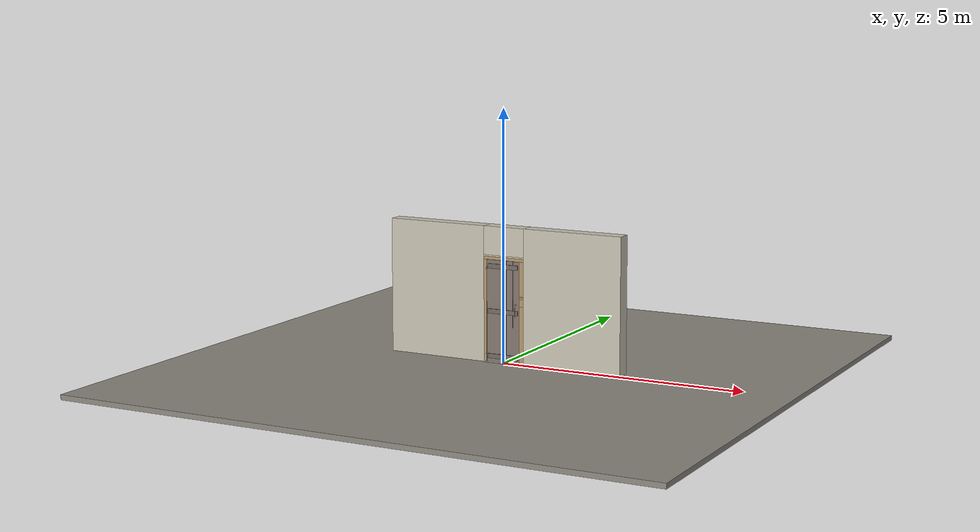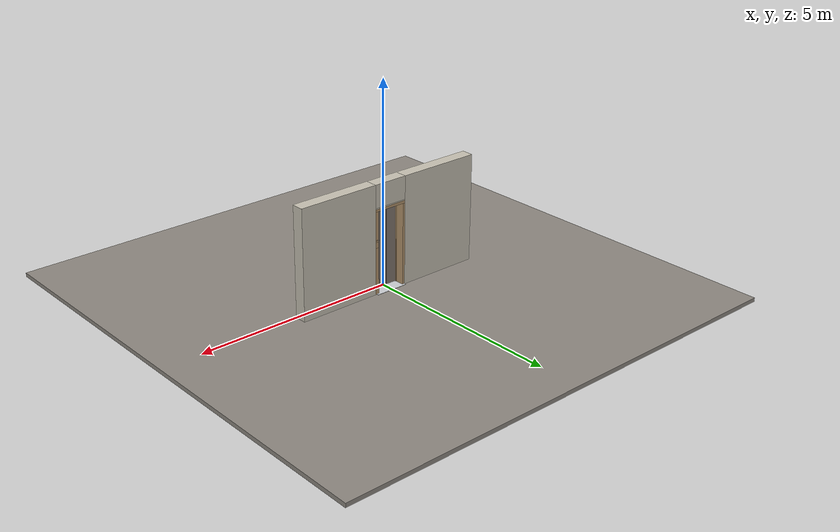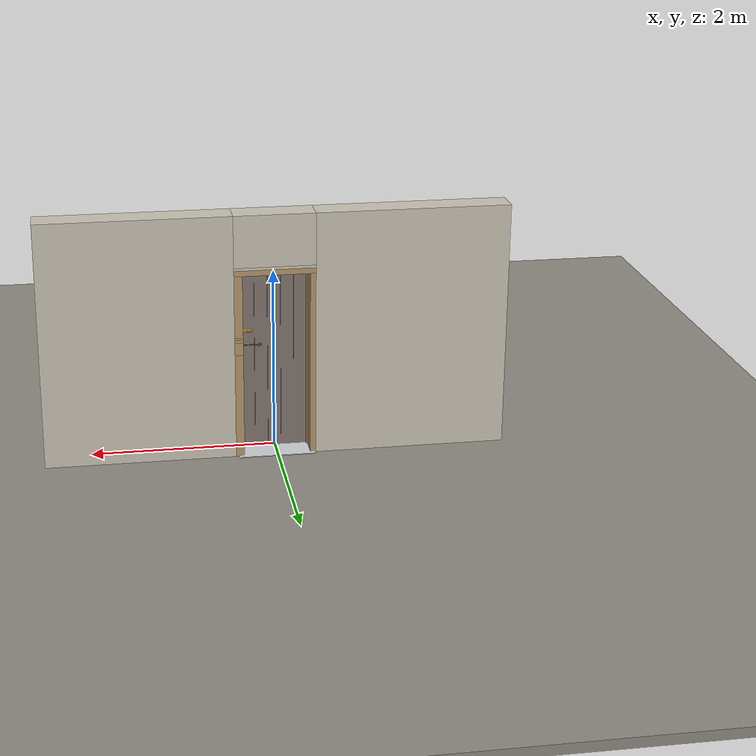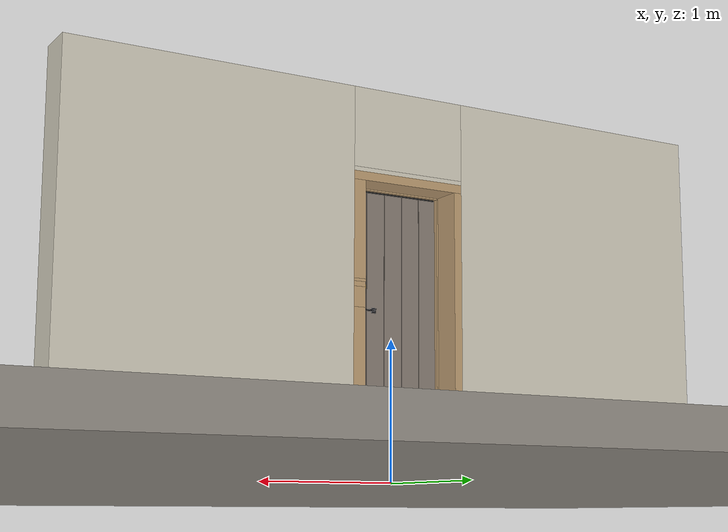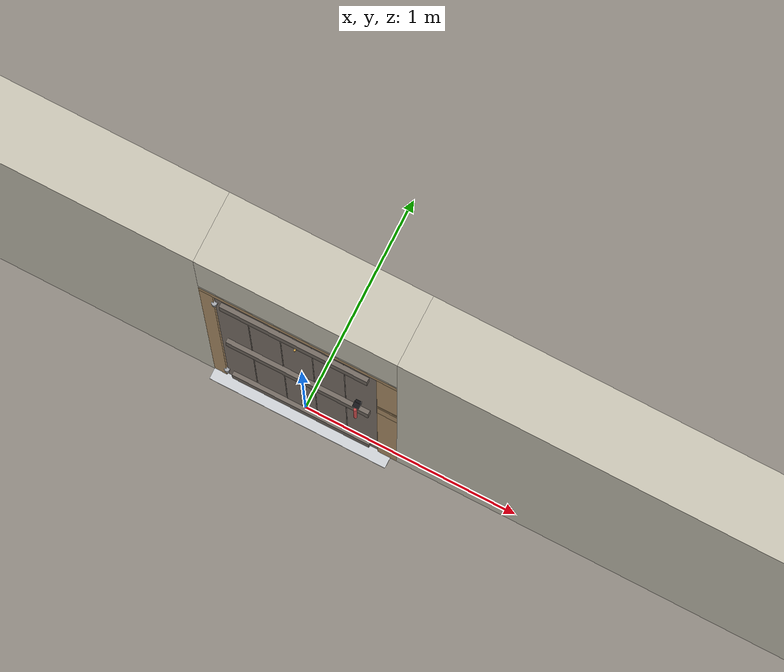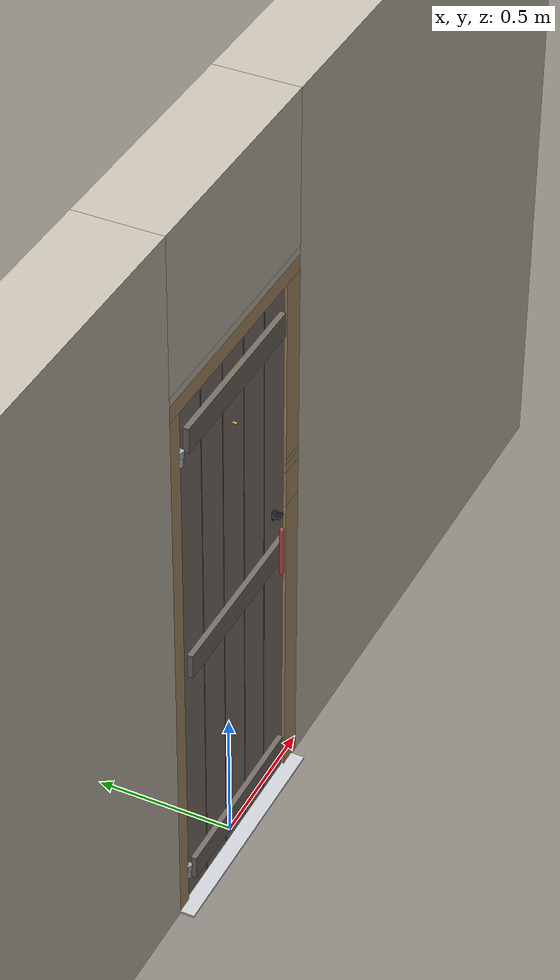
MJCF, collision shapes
<?xml version="1.0" ?>
<mujoco model="db0856_swing_single_full">
  <compiler angle="radian" meshdir="../../hardware" texturedir="../../textures" autolimits="true" inertiafromgeom="false"/>
  <option timestep="0.002" integrator="implicitfast" cone="elliptic" impratio="10" noslip_iterations="3">
    <flag multiccd="enable"/>
  </option>
  <size memory="16M"/>
  <default>
    <geom condim="4" solref="0.005 1" solimp="0.95 0.99 0.001"/>
    <joint solreflimit="0.005 1" solimplimit="0.95 0.99 0.001"/>
    <tendon solreflimit="0.005 1"/>
    <equality solref="0.002 1"/>
  </default>
  <visual>
    <headlight ambient="0.4 0.4 0.4" diffuse="0.7 0.7 0.7" specular="0.2 0.2 0.2"/>
    <quality shadowsize="4096"/>
    <map znear="0.01" zfar="60"/>
  </visual>
  <asset>
    <mesh name="strap_hinge_78d1bbb966" file="strap_hinge_78d1bbb966.obj"/>
    <mesh name="thumb_latch_0073ea78ed" file="thumb_latch_0073ea78ed.obj"/>
    <mesh name="wreath_eea1ff3119" file="wreath_eea1ff3119.obj"/>
    <material name="mat_floor" rgba="0.55 0.53 0.5 1" specular="0.2" shininess="0.15" reflectance="0"/>
    <material name="mat_wall" rgba="0.78 0.76 0.7 1" specular="0.2" shininess="0.1" reflectance="0"/>
    <material name="mat_leaf" rgba="0.5 0.46 0.425 1" specular="0.2" shininess="0.15" reflectance="0"/>
    <material name="mat_leaf_brace" rgba="0.45 0.414 0.383 1" specular="0.2" shininess="0.2" reflectance="0"/>
    <material name="mat_hinge" rgba="0.65 0.66 0.68 1" specular="0.74" shininess="0.5" reflectance="0.36"/>
    <material name="mat_op_wrought_iron" rgba="0.08 0.08 0.09 1" specular="0.56" shininess="0.25" reflectance="0.24"/>
    <material name="mat_op_brass" rgba="0.85 0.66 0.3 1" specular="0.8" shininess="0.75" reflectance="0.4"/>
    <material name="mat_frame" rgba="0.7 0.58 0.42 1" specular="0.2" shininess="0.5" reflectance="0"/>
    <material name="mat_seal" rgba="0.1 0.1 0.1 1" specular="0.2" shininess="0.1" reflectance="0"/>
    <material name="mat_threshold" rgba="0.8 0.81 0.83 1" specular="0.8" shininess="0.6" reflectance="0.4"/>
    <material name="mat_wreath" rgba="0.12 0.3 0.12 1" specular="0.2" shininess="0.05" reflectance="0"/>
    <material name="mat_wreath_hook" rgba="0.85 0.66 0.3 1" specular="0.8" shininess="0.75" reflectance="0.4"/>
    <texture name="skybox" type="skybox" builtin="gradient" rgb1="0.6 0.7 0.85" rgb2="0.9 0.92 0.95" width="256" height="256"/>
  </asset>
  <worldbody>
    <light name="sun" pos="1.5 -2.5 4" dir="-0.3 0.5 -0.8" directional="true" diffuse="0.8 0.8 0.8" specular="0.3 0.3 0.3" castshadow="true"/>
    <light name="fill" pos="-1.5 2.5 3" dir="0.3 -0.5 -0.7" directional="true" diffuse="0.35 0.35 0.4" castshadow="false"/>
    <camera name="robot_view" pos="0 -2.421187 1.734312" xyaxes="1 0 0 0 0.26963 0.962964" fovy="52"/>
    <camera name="far_view" pos="0 2.663187 1.734312" xyaxes="-1 0 0 0 -0.26963 0.962964" fovy="52"/>
    <camera name="iso" pos="1.932062 -2.014438 2.141063" xyaxes="0.741536 0.670913 0 -0.242917 0.268487 0.932151" fovy="46"/>
    <camera name="detail_handle" pos="0.4545 -0.857 1.33" xyaxes="0.97561 0.219512 0 -0.070934 0.315262 0.94635" fovy="38"/>
    <geom name="floor" type="box" size="6 6 0.05" pos="0 0 -0.05" material="mat_floor" group="0" contype="1" conaffinity="1" friction="0.8 0.005 0.0001" density="2400"/>
    <geom name="wall_left" type="box" size="1.04025 0.15 1.35" pos="-1.45975 0.121 1.35" material="mat_wall" group="0" contype="1" conaffinity="1" friction="0.6 0.005 0.0001" density="800"/>
    <geom name="wall_right" type="box" size="1.02525 0.15 1.35" pos="1.47475 0.121 1.35" material="mat_wall" group="0" contype="1" conaffinity="1" friction="0.6 0.005 0.0001" density="800"/>
    <geom name="wall_header" type="box" size="0.4345 0.15 0.2825" pos="0.015 0.121 2.4175" material="mat_wall" group="0" contype="1" conaffinity="1" friction="0.6 0.005 0.0001" density="800"/>
    <geom name="hinge_pintle_0" type="cylinder" size="0.008 0.02" pos="-0.3565 -0.029 0.133" material="mat_hinge" group="1" contype="0" conaffinity="0" density="7850"/>
    <geom name="hinge_pintle_1" type="cylinder" size="0.008 0.02" pos="-0.3565 -0.029 1.865" material="mat_hinge" group="1" contype="0" conaffinity="0" density="7850"/>
    <geom name="leaf_latch_bar_keeper_b" type="box" size="0.015 0.0025 0.0005" pos="0.359 0.034 1.1625" quat="-0.5 -0.5 0.5 0.5" material="mat_op_wrought_iron" group="1" contype="0" conaffinity="0" density="7800"/>
    <geom name="leaf_latch_bar_keeper_l" type="box" size="0.0025 0.07 0.0005" pos="0.359 0.0465 1.235" quat="-0.5 -0.5 0.5 0.5" material="mat_op_wrought_iron" group="1" contype="0" conaffinity="0" density="7800"/>
    <geom name="leaf_latch_bar_keeper_t" type="box" size="0.015 0.0025 0.0005" pos="0.359 0.034 1.3075" quat="-0.5 -0.5 0.5 0.5" material="mat_op_wrought_iron" group="1" contype="0" conaffinity="0" density="7800"/>
    <geom name="leaf_latch_bar_keeper_r" type="box" size="0.0025 0.07 0.0005" pos="0.359 0.0215 1.235" quat="-0.5 -0.5 0.5 0.5" material="mat_op_wrought_iron" group="1" contype="0" conaffinity="0" density="7800"/>
    <geom name="leaf_aux_bolt_keeper_b" type="box" size="0.014 0.003 0.0005" pos="0.359 0.034 1.337" quat="-0.5 -0.5 0.5 0.5" material="mat_op_brass" group="1" contype="0" conaffinity="0" density="7800"/>
    <geom name="leaf_aux_bolt_keeper_l" type="box" size="0.003 0.01 0.0005" pos="0.359 0.045 1.35" quat="-0.5 -0.5 0.5 0.5" material="mat_op_brass" group="1" contype="0" conaffinity="0" density="7800"/>
    <geom name="leaf_aux_bolt_keeper_t" type="box" size="0.014 0.003 0.0005" pos="0.359 0.034 1.363" quat="-0.5 -0.5 0.5 0.5" material="mat_op_brass" group="1" contype="0" conaffinity="0" density="7800"/>
    <geom name="leaf_aux_bolt_keeper_r" type="box" size="0.003 0.01 0.0005" pos="0.359 0.023 1.35" quat="-0.5 -0.5 0.5 0.5" material="mat_op_brass" group="1" contype="0" conaffinity="0" density="7800"/>
    <geom name="jamb_hinge" type="box" size="0.03 0.15 1.0225" pos="-0.3895 0.121 1.0225" material="mat_frame" group="0" contype="1" conaffinity="1" friction="0.6 0.005 0.0001" density="750"/>
    <geom name="strike_1235_wall_n" type="box" size="0.045 0.1135 0.07" pos="0.4045 0.1575 1.235" material="mat_frame" group="0" contype="1" conaffinity="1" friction="0.6 0.005 0.0001" density="750"/>
    <geom name="strike_1235_wall_p" type="box" size="0.045 0.0265 0.07" pos="0.4045 -0.0025 1.235" material="mat_frame" group="0" contype="1" conaffinity="1" friction="0.6 0.005 0.0001" density="750"/>
    <geom name="strike_1235_back" type="box" size="0.035 0.01 0.07" pos="0.4145 0.034 1.235" material="mat_frame" group="0" contype="1" conaffinity="1" friction="0.6 0.005 0.0001" density="750"/>
    <geom name="strike_1350_wall_n" type="box" size="0.045 0.1145 0.01" pos="0.4045 0.1565 1.35" material="mat_frame" group="0" contype="1" conaffinity="1" friction="0.6 0.005 0.0001" density="750"/>
    <geom name="strike_1350_wall_p" type="box" size="0.045 0.0275 0.01" pos="0.4045 -0.0015 1.35" material="mat_frame" group="0" contype="1" conaffinity="1" friction="0.6 0.005 0.0001" density="750"/>
    <geom name="strike_1350_back" type="box" size="0.024 0.008 0.01" pos="0.4255 0.034 1.35" material="mat_frame" group="0" contype="1" conaffinity="1" friction="0.6 0.005 0.0001" density="750"/>
    <geom name="jamb_strike_0" type="box" size="0.045 0.15 0.5825" pos="0.4045 0.121 0.5825" material="mat_frame" group="0" contype="1" conaffinity="1" friction="0.6 0.005 0.0001" density="750"/>
    <geom name="jamb_strike_1" type="box" size="0.045 0.15 0.0175" pos="0.4045 0.121 1.3225" material="mat_frame" group="0" contype="1" conaffinity="1" friction="0.6 0.005 0.0001" density="750"/>
    <geom name="jamb_strike_2" type="box" size="0.045 0.15 0.3425" pos="0.4045 0.121 1.7025" material="mat_frame" group="0" contype="1" conaffinity="1" friction="0.6 0.005 0.0001" density="750"/>
    <geom name="jamb_head" type="box" size="0.4345 0.15 0.03" pos="0.015 0.121 2.075" material="mat_frame" group="0" contype="1" conaffinity="1" friction="0.6 0.005 0.0001" density="750"/>
    <geom name="head_stud" type="box" size="0.4345 0.15 0.015" pos="0.015 0.121 2.12" material="mat_wall" group="0" contype="1" conaffinity="1" friction="0.6 0.005 0.0001" density="500"/>
    <geom name="stop_hinge" type="box" size="0.0055 0.016 1.0225" pos="-0.354 0.0385 1.0225" material="mat_frame" group="0" contype="1" conaffinity="1" friction="0.6 0.005 0.0001" density="750"/>
    <geom name="stop_strike" type="box" size="0.0055 0.016 0.5765" pos="0.354 0.0385 0.5765" material="mat_frame" group="0" contype="1" conaffinity="1" friction="0.6 0.005 0.0001" density="750"/>
    <geom name="stop_strike_1" type="box" size="0.0055 0.016 0.0055" pos="0.354 0.0385 1.3225" material="mat_frame" group="0" contype="1" conaffinity="1" friction="0.6 0.005 0.0001" density="750"/>
    <geom name="stop_strike_2" type="box" size="0.0055 0.016 0.3365" pos="0.354 0.0385 1.7085" material="mat_frame" group="0" contype="1" conaffinity="1" friction="0.6 0.005 0.0001" density="750"/>
    <geom name="stop_head" type="box" size="0.3595 0.016 0.0055" pos="0 0.0385 2.0395" material="mat_frame" group="0" contype="1" conaffinity="1" friction="0.6 0.005 0.0001" density="750"/>
    <geom name="seal_hinge" type="box" size="0.004 0.002 1.0225" pos="-0.3565 0.024 1.0225" material="mat_seal" group="1" contype="0" conaffinity="0" density="1100"/>
    <geom name="seal_strike" type="box" size="0.004 0.002 0.5765" pos="0.3565 0.024 0.5765" material="mat_seal" group="1" contype="0" conaffinity="0" density="1100"/>
    <geom name="seal_strike_1" type="box" size="0.004 0.002 0.0055" pos="0.3565 0.024 1.3225" material="mat_seal" group="1" contype="0" conaffinity="0" density="1100"/>
    <geom name="seal_strike_2" type="box" size="0.004 0.002 0.3365" pos="0.3565 0.024 1.7085" material="mat_seal" group="1" contype="0" conaffinity="0" density="1100"/>
    <geom name="seal_head" type="box" size="0.3395 0.002 0.008" pos="0 0.024 2.033" material="mat_seal" group="1" contype="0" conaffinity="0" density="1100"/>
    <geom name="threshold" type="box" size="0.4195 0.2 0.004" pos="0 0.121 0.004" material="mat_threshold" group="0" contype="1" conaffinity="1" friction="0.6 0.005 0.0001" density="2700"/>
    <geom name="hinge_pintle_0_strap_0" type="box" size="0.0064 0.022 0.016" pos="-0.3565 0.0005 0.133" material="mat_hinge" group="1" contype="0" conaffinity="0" density="7850"/>
    <geom name="hinge_pintle_1_strap_0" type="box" size="0.0064 0.022 0.016" pos="-0.3565 0.0005 1.865" material="mat_hinge" group="1" contype="0" conaffinity="0" density="7850"/>
    <site name="approach_point" pos="0 -1.5 0" quat="1 0 0 0" size="0.05" rgba="0.2 0.9 0.2 0.5" group="4"/>
    <site name="goal_point" pos="0 1.5 0" quat="1 0 0 0" size="0.05" rgba="0.2 0.9 0.2 0.5" group="4"/>
    <site name="door_plane_center" pos="0 0 1.0225" quat="1 0 0 0" size="0.02" rgba="0.2 0.9 0.2 0.5" group="4"/>
    <body name="leaf" pos="-0.3595 0 0">
      <inertial pos="0.353824 -0.004998 1.048731" mass="32.772914" quat="0.501893 -0.499131 -0.498872 -0.500098" diaginertia="1.418928952 11.727032235 13.118850033"/>
      <joint name="leaf_hinge" type="hinge" axis="0 0 -1" pos="0.003 -0.029 0" limited="true" range="0 1.396263" solreflimit="0.02 1" damping="0.143782" frictionloss="5.712132" armature="0.02"/>
      <geom name="leaf_slab" type="box" size="0.3555 0.022 1.016" pos="0.3585 0 1.025" material="mat_leaf" group="0" contype="1" conaffinity="1" friction="0.45 0.005 0.0001" density="1"/>
      <geom name="leaf_plank_gap_1" type="box" size="0.002 0.023 1.006" pos="0.1452 0 1.025" material="mat_leaf_brace" group="1" contype="0" conaffinity="0" density="1"/>
      <geom name="leaf_plank_gap_2" type="box" size="0.002 0.023 1.006" pos="0.2874 0 1.025" material="mat_leaf_brace" group="1" contype="0" conaffinity="0" density="1"/>
      <geom name="leaf_plank_gap_3" type="box" size="0.002 0.023 1.006" pos="0.4296 0 1.025" material="mat_leaf_brace" group="1" contype="0" conaffinity="0" density="1"/>
      <geom name="leaf_plank_gap_4" type="box" size="0.002 0.023 1.006" pos="0.5718 0 1.025" material="mat_leaf_brace" group="1" contype="0" conaffinity="0" density="1"/>
      <geom name="leaf_batten_12" type="box" size="0.3255 0.01 0.045" pos="0.3585 -0.032 0.129" material="mat_leaf_brace" group="1" contype="0" conaffinity="0" density="1"/>
      <geom name="leaf_batten_192" type="box" size="0.3255 0.01 0.045" pos="0.3585 -0.032 1.921" material="mat_leaf_brace" group="1" contype="0" conaffinity="0" density="1"/>
      <geom name="leaf_batten_102" type="box" size="0.3255 0.01 0.045" pos="0.3585 -0.032 1.025" material="mat_leaf_brace" group="1" contype="0" conaffinity="0" density="1"/>
      <geom name="hinge_strap_0" type="mesh" mesh="strap_hinge_78d1bbb966" pos="0.003 -0.025 0.159" material="mat_hinge" group="1" contype="0" conaffinity="0" density="7850"/>
      <geom name="hinge_strap_eye_0" type="cylinder" size="0.011 0.012" pos="0.003 -0.029 0.159" material="mat_hinge" group="1" contype="0" conaffinity="0" density="7850"/>
      <geom name="hinge_strap_neck_0" type="box" size="0.012 0.006 0.006" pos="0.003 -0.027 0.159" material="mat_hinge" group="1" contype="0" conaffinity="0" density="7850"/>
      <geom name="hinge_strap_1" type="mesh" mesh="strap_hinge_78d1bbb966" pos="0.003 -0.025 1.891" material="mat_hinge" group="1" contype="0" conaffinity="0" density="7850"/>
      <geom name="hinge_strap_eye_1" type="cylinder" size="0.011 0.012" pos="0.003 -0.029 1.891" material="mat_hinge" group="1" contype="0" conaffinity="0" density="7850"/>
      <geom name="hinge_strap_neck_1" type="box" size="0.012 0.006 0.006" pos="0.003 -0.027 1.891" material="mat_hinge" group="1" contype="0" conaffinity="0" density="7850"/>
      <geom name="leaf_suffolk_grip" type="mesh" mesh="thumb_latch_0073ea78ed" pos="0.634 -0.022 1.05" quat="0.707107 0.707107 0 0" material="mat_op_wrought_iron" group="1" contype="0" conaffinity="0" density="7000"/>
      <geom name="leaf_suffolk_grip_col" type="capsule" size="0.008 0.09" pos="0.634 -0.057 1.05" material="mat_op_wrought_iron" group="3" contype="1" conaffinity="1" rgba="0.8 0.3 0.3 0.25" friction="0.7 0.01 0.0001" density="7000"/>
      <geom name="leaf_latch_bar_pivot" type="box" size="0.018 0.002 0.018" pos="0.514 0.024 1.19" material="mat_op_wrought_iron" group="1" contype="0" conaffinity="0" density="7000"/>
      <geom name="leaf_latch_bar_pin" type="cylinder" size="0.005 0.01" pos="0.514 0.032 1.19" quat="0.707107 -0.707107 0 0" material="mat_op_wrought_iron" group="1" contype="0" conaffinity="0" density="7000"/>
      <geom name="leaf_aux_bolt_plate" type="box" size="0.0595 0.019 0.001" pos="0.6465 0.023 1.35" quat="0.707107 -0.707107 0 0" material="mat_op_brass" group="1" contype="0" conaffinity="0" density="7800"/>
      <geom name="leaf_aux_bolt_guide_0_leg_n" type="box" size="0.006 0.002 0.0125" pos="0.698 0.0345 1.361" quat="0.707107 -0.707107 0 0" material="mat_op_brass" group="1" contype="0" conaffinity="0" density="7800"/>
      <geom name="leaf_aux_bolt_guide_0_leg_p" type="box" size="0.006 0.002 0.0125" pos="0.698 0.0345 1.339" quat="0.707107 -0.707107 0 0" material="mat_op_brass" group="1" contype="0" conaffinity="0" density="7800"/>
      <geom name="leaf_aux_bolt_guide_0_bridge" type="box" size="0.006 0.013 0.002" pos="0.698 0.045 1.35" quat="0.707107 -0.707107 0 0" material="mat_op_brass" group="1" contype="0" conaffinity="0" density="7800"/>
      <geom name="leaf_aux_bolt_guide_1_leg_n" type="box" size="0.006 0.002 0.0125" pos="0.597 0.0345 1.361" quat="0.707107 -0.707107 0 0" material="mat_op_brass" group="1" contype="0" conaffinity="0" density="7800"/>
      <geom name="leaf_aux_bolt_guide_1_leg_p" type="box" size="0.006 0.002 0.0125" pos="0.597 0.0345 1.339" quat="0.707107 -0.707107 0 0" material="mat_op_brass" group="1" contype="0" conaffinity="0" density="7800"/>
      <geom name="leaf_aux_bolt_guide_1_bridge" type="box" size="0.006 0.013 0.002" pos="0.597 0.045 1.35" quat="0.707107 -0.707107 0 0" material="mat_op_brass" group="1" contype="0" conaffinity="0" density="7800"/>
      <geom name="wreath" type="mesh" mesh="wreath_eea1ff3119" pos="0.3585 -0.022 1.59396" quat="0.707107 0.707107 0 0" material="mat_wreath" group="2" contype="0" conaffinity="0" density="200"/>
      <geom name="wreath_hook" type="cylinder" size="0.004 0.008" pos="0.3585 -0.029 1.75971" quat="0.707107 -0.707107 0 0" material="mat_wreath_hook" group="2" contype="0" conaffinity="0" density="8500"/>
      <site name="leaf_grip_n" pos="0.634 -0.057 1.05" quat="1 0 0 0" size="0.012" rgba="0.2 0.9 0.2 0.5" group="4"/>
      <site name="leaf_edge_mid" pos="0.714 0 1.016" quat="1 0 0 0" size="0.02" rgba="0.2 0.9 0.2 0.5" group="4"/>
      <body name="leaf_thumb" pos="0.634 -0.022 1.195">
        <inertial pos="0 -0.002591 -0.005803" mass="0.128464" quat="0.698937 -0.107178 -0.107178 -0.698937" diaginertia="0.000010795 0.000049998 0.000051452"/>
        <joint name="leaf_thumb_hinge" type="hinge" axis="1 0 0" limited="true" range="0 0.3" damping="0.155346" frictionloss="0.032" stiffness="0.6" springref="-0.5" armature="0.01"/>
        <geom name="leaf_thumb_geom" type="box" size="0.015 0.014 0.003" pos="0 -0.02 0" material="mat_op_wrought_iron" group="0" contype="1" conaffinity="1" friction="0.6 0.005 0.0001" density="7000"/>
        <geom name="leaf_thumb_boss" type="box" size="0.012 0.008 0.013" pos="0 -0.004 -0.005" material="mat_op_wrought_iron" group="1" contype="0" conaffinity="0" density="7000"/>
        <geom name="leaf_thumb_lifter" type="box" size="0.004 0.026 0.004" pos="0 0.028 -0.017" material="mat_op_wrought_iron" group="1" contype="0" conaffinity="0" density="7000"/>
        <site name="leaf_thumb_push" pos="0 -0.024 0.005" quat="1 0 0 0" size="0.01" rgba="0.2 0.9 0.2 0.5" group="4"/>
      </body>
      <body name="leaf_latch_bar" pos="0.514 0.034 1.19">
        <inertial pos="0.106 0 0" mass="0.25" quat="0 0 0.707107 0.707107" diaginertia="0.000004465 0.000904065 0.000904065"/>
        <joint name="leaf_latch_bar_hinge" type="hinge" axis="0 -1 0" limited="true" range="0 0.6" damping="0.01" frictionloss="0.01" armature="0.005"/>
        <geom name="leaf_latch_bar_geom" type="capsule" size="0.006 0.1" pos="0.106 0 0" quat="0.707107 0 0.707107 0" material="mat_op_wrought_iron" group="0" contype="1" conaffinity="1" friction="0.6 0.005 0.0001" density="7850"/>
      </body>
      <body name="leaf_aux_bolt" pos="0.714 0.034 1.35">
        <inertial pos="-0.068563 0.00492 0" mass="0.111784" quat="0.998595 0 0 -0.05299" diaginertia="0.000012212 0.000071985 0.000082309"/>
        <joint name="leaf_aux_bolt_slide" type="slide" axis="-1 0 0" limited="true" range="0 0.045" damping="1" frictionloss="1" armature="0.1" ref="0.045"/>
        <geom name="leaf_aux_bolt_rod" type="capsule" size="0.006 0.044" pos="-0.065 0 0" quat="0.707107 0 0.707107 0" material="mat_op_brass" group="0" contype="1" conaffinity="1" friction="0.6 0.005 0.0001" density="7850"/>
        <geom name="leaf_aux_bolt_knob" type="capsule" size="0.005 0.01" pos="-0.08 0.015 0" quat="0.707107 -0.707107 0 0" material="mat_op_brass" group="0" contype="1" conaffinity="1" friction="0.6 0.005 0.0001" density="7850"/>
        <geom name="leaf_aux_bolt_knob_end" type="sphere" size="0.00675" pos="-0.08 0.03 0" material="mat_op_brass" group="1" contype="0" conaffinity="0" density="7850"/>
        <site name="leaf_aux_bolt_grip" pos="-0.08 0.034 0" quat="1 0 0 0" size="0.012" rgba="0.2 0.9 0.2 0.5" group="4"/>
      </body>
    </body>
  </worldbody>
  <equality>
    <joint name="leaf_thumb_couple" joint1="leaf_latch_bar_hinge" joint2="leaf_thumb_hinge" polycoef="0 2 0 0 0" active="true"/>
  </equality>
  <sensor>
    <jointpos name="leaf_hinge_pos" joint="leaf_hinge"/>
    <jointvel name="leaf_hinge_vel" joint="leaf_hinge"/>
    <jointpos name="leaf_thumb_hinge_pos" joint="leaf_thumb_hinge"/>
    <jointvel name="leaf_thumb_hinge_vel" joint="leaf_thumb_hinge"/>
    <jointpos name="leaf_latch_bar_hinge_pos" joint="leaf_latch_bar_hinge"/>
    <jointvel name="leaf_latch_bar_hinge_vel" joint="leaf_latch_bar_hinge"/>
    <jointpos name="leaf_aux_bolt_slide_pos" joint="leaf_aux_bolt_slide"/>
    <jointvel name="leaf_aux_bolt_slide_vel" joint="leaf_aux_bolt_slide"/>
  </sensor>
</mujoco>
